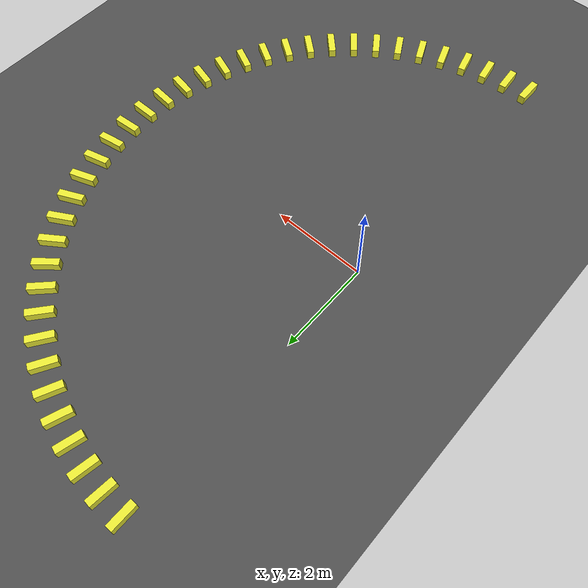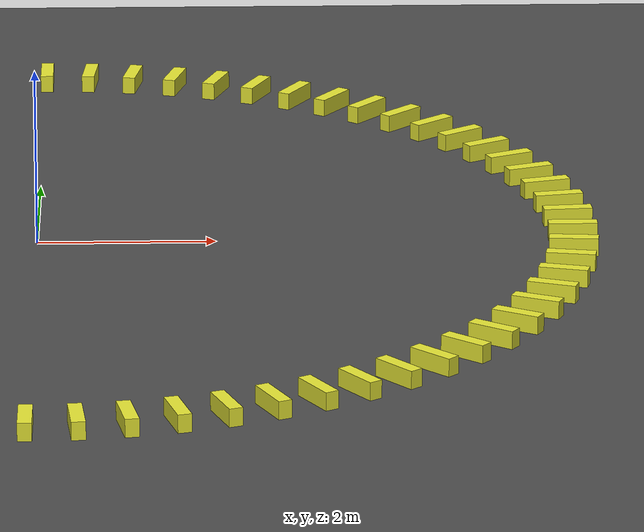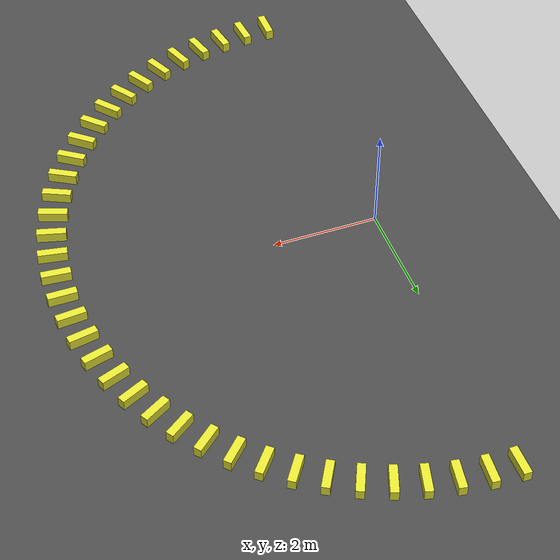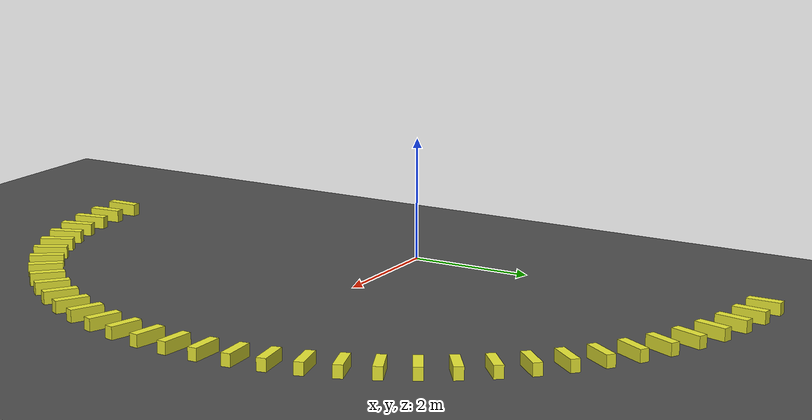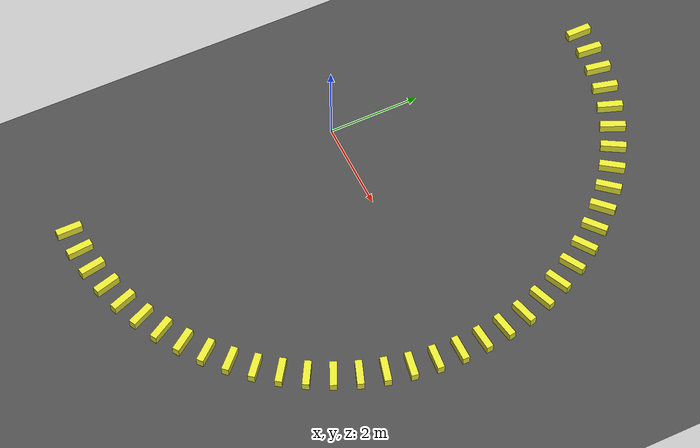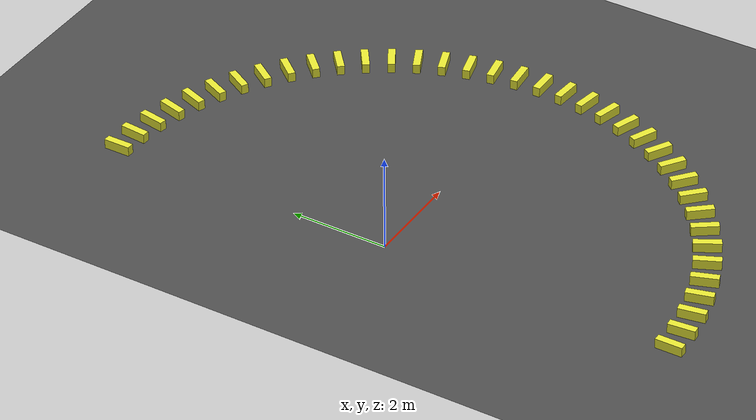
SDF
<sdf version="1.9">
 <world name="oval_track">
  <model name="ground_plane">
   <static>true</static>
   <link name="link">
    <collision name="collision">
     <geometry><plane><normal>0 0 1</normal><size>50 50</size></plane></geometry>
    </collision>
    <visual name="visual">
     <geometry><plane><normal>0 0 1</normal><size>50 50</size></plane></geometry>
     <material><ambient>0.3 0.3 0.3 1</ambient><diffuse>0.3 0.3 0.3 1</diffuse></material>
    </visual>
   </link>
  </model>
  <model name="outer_wall_seg_0">
   <static>true</static>
   <pose>6.0000 0.0000 0.1 0 0 1.5708</pose>
   <link name="l">
    <collision name="c"><geometry><box><size>0.15 0.550 0.2</size></box></geometry></collision>
    <visual name="v">
     <geometry><box><size>0.15 0.550 0.2</size></box></geometry>
     <material><ambient>0.9 0.9 0.2 1</ambient><diffuse>0.9 0.9 0.2 1</diffuse></material>
    </visual>
   </link>
  </model>
  <model name="outer_wall_seg_1">
   <static>true</static>
   <pose>5.9772 0.5229 0.1 0 0 1.6581</pose>
   <link name="l">
    <collision name="c"><geometry><box><size>0.15 0.550 0.2</size></box></geometry></collision>
    <visual name="v">
     <geometry><box><size>0.15 0.550 0.2</size></box></geometry>
     <material><ambient>0.9 0.9 0.2 1</ambient><diffuse>0.9 0.9 0.2 1</diffuse></material>
    </visual>
   </link>
  </model>
  <model name="outer_wall_seg_2">
   <static>true</static>
   <pose>5.9088 1.0419 0.1 0 0 1.7453</pose>
   <link name="l">
    <collision name="c"><geometry><box><size>0.15 0.550 0.2</size></box></geometry></collision>
    <visual name="v">
     <geometry><box><size>0.15 0.550 0.2</size></box></geometry>
     <material><ambient>0.9 0.9 0.2 1</ambient><diffuse>0.9 0.9 0.2 1</diffuse></material>
    </visual>
   </link>
  </model>
  <model name="outer_wall_seg_3">
   <static>true</static>
   <pose>5.7956 1.5529 0.1 0 0 1.8326</pose>
   <link name="l">
    <collision name="c"><geometry><box><size>0.15 0.550 0.2</size></box></geometry></collision>
    <visual name="v">
     <geometry><box><size>0.15 0.550 0.2</size></box></geometry>
     <material><ambient>0.9 0.9 0.2 1</ambient><diffuse>0.9 0.9 0.2 1</diffuse></material>
    </visual>
   </link>
  </model>
  <model name="outer_wall_seg_4">
   <static>true</static>
   <pose>5.6382 2.0521 0.1 0 0 1.9199</pose>
   <link name="l">
    <collision name="c"><geometry><box><size>0.15 0.550 0.2</size></box></geometry></collision>
    <visual name="v">
     <geometry><box><size>0.15 0.550 0.2</size></box></geometry>
     <material><ambient>0.9 0.9 0.2 1</ambient><diffuse>0.9 0.9 0.2 1</diffuse></material>
    </visual>
   </link>
  </model>
  <model name="outer_wall_seg_5">
   <static>true</static>
   <pose>5.4378 2.5357 0.1 0 0 2.0071</pose>
   <link name="l">
    <collision name="c"><geometry><box><size>0.15 0.550 0.2</size></box></geometry></collision>
    <visual name="v">
     <geometry><box><size>0.15 0.550 0.2</size></box></geometry>
     <material><ambient>0.9 0.9 0.2 1</ambient><diffuse>0.9 0.9 0.2 1</diffuse></material>
    </visual>
   </link>
  </model>
  <model name="outer_wall_seg_6">
   <static>true</static>
   <pose>5.1962 3.0000 0.1 0 0 2.0944</pose>
   <link name="l">
    <collision name="c"><geometry><box><size>0.15 0.550 0.2</size></box></geometry></collision>
    <visual name="v">
     <geometry><box><size>0.15 0.550 0.2</size></box></geometry>
     <material><ambient>0.9 0.9 0.2 1</ambient><diffuse>0.9 0.9 0.2 1</diffuse></material>
    </visual>
   </link>
  </model>
  <model name="outer_wall_seg_7">
   <static>true</static>
   <pose>4.9149 3.4415 0.1 0 0 2.1817</pose>
   <link name="l">
    <collision name="c"><geometry><box><size>0.15 0.550 0.2</size></box></geometry></collision>
    <visual name="v">
     <geometry><box><size>0.15 0.550 0.2</size></box></geometry>
     <material><ambient>0.9 0.9 0.2 1</ambient><diffuse>0.9 0.9 0.2 1</diffuse></material>
    </visual>
   </link>
  </model>
  <model name="outer_wall_seg_8">
   <static>true</static>
   <pose>4.5963 3.8567 0.1 0 0 2.2689</pose>
   <link name="l">
    <collision name="c"><geometry><box><size>0.15 0.550 0.2</size></box></geometry></collision>
    <visual name="v">
     <geometry><box><size>0.15 0.550 0.2</size></box></geometry>
     <material><ambient>0.9 0.9 0.2 1</ambient><diffuse>0.9 0.9 0.2 1</diffuse></material>
    </visual>
   </link>
  </model>
  <model name="outer_wall_seg_9">
   <static>true</static>
   <pose>4.2426 4.2426 0.1 0 0 2.3562</pose>
   <link name="l">
    <collision name="c"><geometry><box><size>0.15 0.550 0.2</size></box></geometry></collision>
    <visual name="v">
     <geometry><box><size>0.15 0.550 0.2</size></box></geometry>
     <material><ambient>0.9 0.9 0.2 1</ambient><diffuse>0.9 0.9 0.2 1</diffuse></material>
    </visual>
   </link>
  </model>
  <model name="outer_wall_seg_10">
   <static>true</static>
   <pose>3.8567 4.5963 0.1 0 0 2.4435</pose>
   <link name="l">
    <collision name="c"><geometry><box><size>0.15 0.550 0.2</size></box></geometry></collision>
    <visual name="v">
     <geometry><box><size>0.15 0.550 0.2</size></box></geometry>
     <material><ambient>0.9 0.9 0.2 1</ambient><diffuse>0.9 0.9 0.2 1</diffuse></material>
    </visual>
   </link>
  </model>
  <model name="outer_wall_seg_11">
   <static>true</static>
   <pose>3.4415 4.9149 0.1 0 0 2.5307</pose>
   <link name="l">
    <collision name="c"><geometry><box><size>0.15 0.550 0.2</size></box></geometry></collision>
    <visual name="v">
     <geometry><box><size>0.15 0.550 0.2</size></box></geometry>
     <material><ambient>0.9 0.9 0.2 1</ambient><diffuse>0.9 0.9 0.2 1</diffuse></material>
    </visual>
   </link>
  </model>
  <model name="outer_wall_seg_12">
   <static>true</static>
   <pose>3.0000 5.1962 0.1 0 0 2.6180</pose>
   <link name="l">
    <collision name="c"><geometry><box><size>0.15 0.550 0.2</size></box></geometry></collision>
    <visual name="v">
     <geometry><box><size>0.15 0.550 0.2</size></box></geometry>
     <material><ambient>0.9 0.9 0.2 1</ambient><diffuse>0.9 0.9 0.2 1</diffuse></material>
    </visual>
   </link>
  </model>
  <model name="outer_wall_seg_13">
   <static>true</static>
   <pose>2.5357 5.4378 0.1 0 0 2.7053</pose>
   <link name="l">
    <collision name="c"><geometry><box><size>0.15 0.550 0.2</size></box></geometry></collision>
    <visual name="v">
     <geometry><box><size>0.15 0.550 0.2</size></box></geometry>
     <material><ambient>0.9 0.9 0.2 1</ambient><diffuse>0.9 0.9 0.2 1</diffuse></material>
    </visual>
   </link>
  </model>
  <model name="outer_wall_seg_14">
   <static>true</static>
   <pose>2.0521 5.6382 0.1 0 0 2.7925</pose>
   <link name="l">
    <collision name="c"><geometry><box><size>0.15 0.550 0.2</size></box></geometry></collision>
    <visual name="v">
     <geometry><box><size>0.15 0.550 0.2</size></box></geometry>
     <material><ambient>0.9 0.9 0.2 1</ambient><diffuse>0.9 0.9 0.2 1</diffuse></material>
    </visual>
   </link>
  </model>
  <model name="outer_wall_seg_15">
   <static>true</static>
   <pose>1.5529 5.7956 0.1 0 0 2.8798</pose>
   <link name="l">
    <collision name="c"><geometry><box><size>0.15 0.550 0.2</size></box></geometry></collision>
    <visual name="v">
     <geometry><box><size>0.15 0.550 0.2</size></box></geometry>
     <material><ambient>0.9 0.9 0.2 1</ambient><diffuse>0.9 0.9 0.2 1</diffuse></material>
    </visual>
   </link>
  </model>
  <model name="outer_wall_seg_16">
   <static>true</static>
   <pose>1.0419 5.9088 0.1 0 0 2.9671</pose>
   <link name="l">
    <collision name="c"><geometry><box><size>0.15 0.550 0.2</size></box></geometry></collision>
    <visual name="v">
     <geometry><box><size>0.15 0.550 0.2</size></box></geometry>
     <material><ambient>0.9 0.9 0.2 1</ambient><diffuse>0.9 0.9 0.2 1</diffuse></material>
    </visual>
   </link>
  </model>
  <model name="outer_wall_seg_17">
   <static>true</static>
   <pose>0.5229 5.9772 0.1 0 0 3.0543</pose>
   <link name="l">
    <collision name="c"><geometry><box><size>0.15 0.550 0.2</size></box></geometry></collision>
    <visual name="v">
     <geometry><box><size>0.15 0.550 0.2</size></box></geometry>
     <material><ambient>0.9 0.9 0.2 1</ambient><diffuse>0.9 0.9 0.2 1</diffuse></material>
    </visual>
   </link>
  </model>
  <model name="outer_wall_seg_18">
   <static>true</static>
   <pose>0.0000 6.0000 0.1 0 0 3.1416</pose>
   <link name="l">
    <collision name="c"><geometry><box><size>0.15 0.550 0.2</size></box></geometry></collision>
    <visual name="v">
     <geometry><box><size>0.15 0.550 0.2</size></box></geometry>
     <material><ambient>0.9 0.9 0.2 1</ambient><diffuse>0.9 0.9 0.2 1</diffuse></material>
    </visual>
   </link>
  </model>
  <model name="outer_wall_seg_54">
   <static>true</static>
   <pose>-0.0000 -6.0000 0.1 0 0 6.2832</pose>
   <link name="l">
    <collision name="c"><geometry><box><size>0.15 0.550 0.2</size></box></geometry></collision>
    <visual name="v">
     <geometry><box><size>0.15 0.550 0.2</size></box></geometry>
     <material><ambient>0.9 0.9 0.2 1</ambient><diffuse>0.9 0.9 0.2 1</diffuse></material>
    </visual>
   </link>
  </model>
  <model name="outer_wall_seg_55">
   <static>true</static>
   <pose>0.5229 -5.9772 0.1 0 0 6.3705</pose>
   <link name="l">
    <collision name="c"><geometry><box><size>0.15 0.550 0.2</size></box></geometry></collision>
    <visual name="v">
     <geometry><box><size>0.15 0.550 0.2</size></box></geometry>
     <material><ambient>0.9 0.9 0.2 1</ambient><diffuse>0.9 0.9 0.2 1</diffuse></material>
    </visual>
   </link>
  </model>
  <model name="outer_wall_seg_56">
   <static>true</static>
   <pose>1.0419 -5.9088 0.1 0 0 6.4577</pose>
   <link name="l">
    <collision name="c"><geometry><box><size>0.15 0.550 0.2</size></box></geometry></collision>
    <visual name="v">
     <geometry><box><size>0.15 0.550 0.2</size></box></geometry>
     <material><ambient>0.9 0.9 0.2 1</ambient><diffuse>0.9 0.9 0.2 1</diffuse></material>
    </visual>
   </link>
  </model>
  <model name="outer_wall_seg_57">
   <static>true</static>
   <pose>1.5529 -5.7956 0.1 0 0 6.5450</pose>
   <link name="l">
    <collision name="c"><geometry><box><size>0.15 0.550 0.2</size></box></geometry></collision>
    <visual name="v">
     <geometry><box><size>0.15 0.550 0.2</size></box></geometry>
     <material><ambient>0.9 0.9 0.2 1</ambient><diffuse>0.9 0.9 0.2 1</diffuse></material>
    </visual>
   </link>
  </model>
  <model name="outer_wall_seg_58">
   <static>true</static>
   <pose>2.0521 -5.6382 0.1 0 0 6.6323</pose>
   <link name="l">
    <collision name="c"><geometry><box><size>0.15 0.550 0.2</size></box></geometry></collision>
    <visual name="v">
     <geometry><box><size>0.15 0.550 0.2</size></box></geometry>
     <material><ambient>0.9 0.9 0.2 1</ambient><diffuse>0.9 0.9 0.2 1</diffuse></material>
    </visual>
   </link>
  </model>
  <model name="outer_wall_seg_59">
   <static>true</static>
   <pose>2.5357 -5.4378 0.1 0 0 6.7195</pose>
   <link name="l">
    <collision name="c"><geometry><box><size>0.15 0.550 0.2</size></box></geometry></collision>
    <visual name="v">
     <geometry><box><size>0.15 0.550 0.2</size></box></geometry>
     <material><ambient>0.9 0.9 0.2 1</ambient><diffuse>0.9 0.9 0.2 1</diffuse></material>
    </visual>
   </link>
  </model>
  <model name="outer_wall_seg_60">
   <static>true</static>
   <pose>3.0000 -5.1962 0.1 0 0 6.8068</pose>
   <link name="l">
    <collision name="c"><geometry><box><size>0.15 0.550 0.2</size></box></geometry></collision>
    <visual name="v">
     <geometry><box><size>0.15 0.550 0.2</size></box></geometry>
     <material><ambient>0.9 0.9 0.2 1</ambient><diffuse>0.9 0.9 0.2 1</diffuse></material>
    </visual>
   </link>
  </model>
  <model name="outer_wall_seg_61">
   <static>true</static>
   <pose>3.4415 -4.9149 0.1 0 0 6.8941</pose>
   <link name="l">
    <collision name="c"><geometry><box><size>0.15 0.550 0.2</size></box></geometry></collision>
    <visual name="v">
     <geometry><box><size>0.15 0.550 0.2</size></box></geometry>
     <material><ambient>0.9 0.9 0.2 1</ambient><diffuse>0.9 0.9 0.2 1</diffuse></material>
    </visual>
   </link>
  </model>
  <model name="outer_wall_seg_62">
   <static>true</static>
   <pose>3.8567 -4.5963 0.1 0 0 6.9813</pose>
   <link name="l">
    <collision name="c"><geometry><box><size>0.15 0.550 0.2</size></box></geometry></collision>
    <visual name="v">
     <geometry><box><size>0.15 0.550 0.2</size></box></geometry>
     <material><ambient>0.9 0.9 0.2 1</ambient><diffuse>0.9 0.9 0.2 1</diffuse></material>
    </visual>
   </link>
  </model>
  <model name="outer_wall_seg_63">
   <static>true</static>
   <pose>4.2426 -4.2426 0.1 0 0 7.0686</pose>
   <link name="l">
    <collision name="c"><geometry><box><size>0.15 0.550 0.2</size></box></geometry></collision>
    <visual name="v">
     <geometry><box><size>0.15 0.550 0.2</size></box></geometry>
     <material><ambient>0.9 0.9 0.2 1</ambient><diffuse>0.9 0.9 0.2 1</diffuse></material>
    </visual>
   </link>
  </model>
  <model name="outer_wall_seg_64">
   <static>true</static>
   <pose>4.5963 -3.8567 0.1 0 0 7.1558</pose>
   <link name="l">
    <collision name="c"><geometry><box><size>0.15 0.550 0.2</size></box></geometry></collision>
    <visual name="v">
     <geometry><box><size>0.15 0.550 0.2</size></box></geometry>
     <material><ambient>0.9 0.9 0.2 1</ambient><diffuse>0.9 0.9 0.2 1</diffuse></material>
    </visual>
   </link>
  </model>
  <model name="outer_wall_seg_65">
   <static>true</static>
   <pose>4.9149 -3.4415 0.1 0 0 7.2431</pose>
   <link name="l">
    <collision name="c"><geometry><box><size>0.15 0.550 0.2</size></box></geometry></collision>
    <visual name="v">
     <geometry><box><size>0.15 0.550 0.2</size></box></geometry>
     <material><ambient>0.9 0.9 0.2 1</ambient><diffuse>0.9 0.9 0.2 1</diffuse></material>
    </visual>
   </link>
  </model>
  <model name="outer_wall_seg_66">
   <static>true</static>
   <pose>5.1962 -3.0000 0.1 0 0 7.3304</pose>
   <link name="l">
    <collision name="c"><geometry><box><size>0.15 0.550 0.2</size></box></geometry></collision>
    <visual name="v">
     <geometry><box><size>0.15 0.550 0.2</size></box></geometry>
     <material><ambient>0.9 0.9 0.2 1</ambient><diffuse>0.9 0.9 0.2 1</diffuse></material>
    </visual>
   </link>
  </model>
  <model name="outer_wall_seg_67">
   <static>true</static>
   <pose>5.4378 -2.5357 0.1 0 0 7.4176</pose>
   <link name="l">
    <collision name="c"><geometry><box><size>0.15 0.550 0.2</size></box></geometry></collision>
    <visual name="v">
     <geometry><box><size>0.15 0.550 0.2</size></box></geometry>
     <material><ambient>0.9 0.9 0.2 1</ambient><diffuse>0.9 0.9 0.2 1</diffuse></material>
    </visual>
   </link>
  </model>
  <model name="outer_wall_seg_68">
   <static>true</static>
   <pose>5.6382 -2.0521 0.1 0 0 7.5049</pose>
   <link name="l">
    <collision name="c"><geometry><box><size>0.15 0.550 0.2</size></box></geometry></collision>
    <visual name="v">
     <geometry><box><size>0.15 0.550 0.2</size></box></geometry>
     <material><ambient>0.9 0.9 0.2 1</ambient><diffuse>0.9 0.9 0.2 1</diffuse></material>
    </visual>
   </link>
  </model>
  <model name="outer_wall_seg_69">
   <static>true</static>
   <pose>5.7956 -1.5529 0.1 0 0 7.5922</pose>
   <link name="l">
    <collision name="c"><geometry><box><size>0.15 0.550 0.2</size></box></geometry></collision>
    <visual name="v">
     <geometry><box><size>0.15 0.550 0.2</size></box></geometry>
     <material><ambient>0.9 0.9 0.2 1</ambient><diffuse>0.9 0.9 0.2 1</diffuse></material>
    </visual>
   </link>
  </model>
  <model name="outer_wall_seg_70">
   <static>true</static>
   <pose>5.9088 -1.0419 0.1 0 0 7.6794</pose>
   <link name="l">
    <collision name="c"><geometry><box><size>0.15 0.550 0.2</size></box></geometry></collision>
    <visual name="v">
     <geometry><box><size>0.15 0.550 0.2</size></box></geometry>
     <material><ambient>0.9 0.9 0.2 1</ambient><diffuse>0.9 0.9 0.2 1</diffuse></material>
    </visual>
   </link>
  </model>
  <model name="outer_wall_seg_71">
   <static>true</static>
   <pose>5.9772 -0.5229 0.1 0 0 7.7667</pose>
   <link name="l">
    <collision name="c"><geometry><box><size>0.15 0.550 0.2</size></box></geometry></collision>
    <visual name="v">
     <geometry><box><size>0.15 0.550 0.2</size></box></geometry>
     <material><ambient>0.9 0.9 0.2 1</ambient><diffuse>0.9 0.9 0.2 1</diffuse></material>
    </visual>
   </link>
  </model>
 </world>
</sdf>
